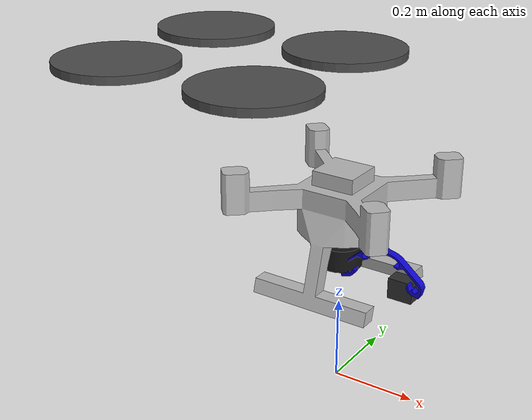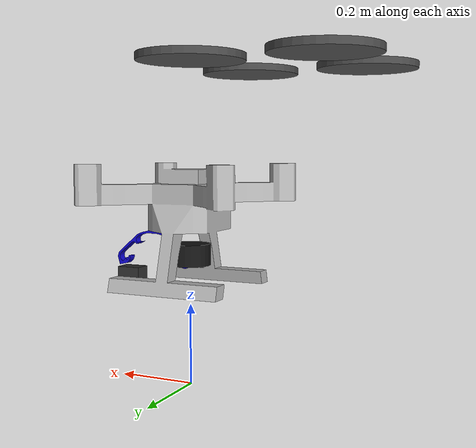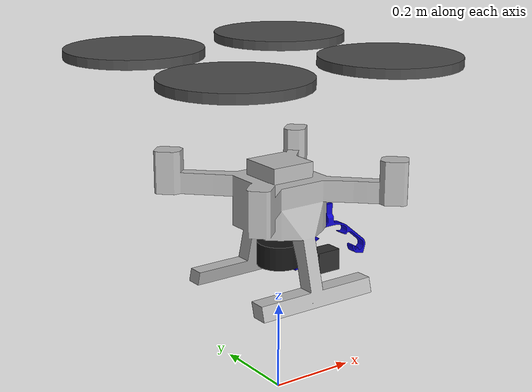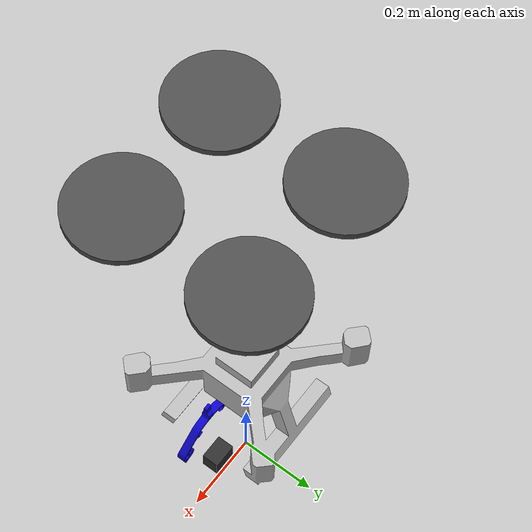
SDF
<?xml version="1.0" encoding="UTF-8"?>
<sdf version='1.9'>
  <model name='piazinho_rplidar'>
    <include merge='true'>
      <uri>piazinho_mono_cam</uri>
    </include>
    <include merge='true'>
      <uri>model://rplidar_a3m1</uri>
      <pose relative_to="base_link">0 0 0.3 0 0 0</pose>
    </include>
    <joint name="LidarJoint" type="fixed">
      <parent>base_link</parent>
      <child>rplidar_a3m1/base_link</child>
    </joint>
  </model>
</sdf>

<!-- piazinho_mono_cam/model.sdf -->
<sdf version='1.9'>
  <model name='piazinho_mono_cam'>
    <include merge='true'>
      <uri>piazinho</uri>
    </include>
    <include merge='true'>
      <uri>model://mono_cam</uri>
      <pose>.12 .03 .242 0 0 0</pose>
    </include>
    <joint name="CameraJoint" type="fixed">
      <parent>base_link</parent>
      <child>mono_cam/base_link</child>
      <pose relative_to="base_link">.12 .03 .242 0 0 0</pose>
    </joint>
  </model>
</sdf>

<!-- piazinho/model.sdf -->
<sdf version='1.9'>
  <model name='piazinho'>
    <include merge='true'>
      <uri>model://piazinho_base</uri>
    </include>
    <plugin filename="gz-sim-multicopter-motor-model-system" name="gz::sim::systems::MulticopterMotorModel">
      <jointName>rotor_0_joint</jointName>
      <linkName>rotor_0</linkName>
      <turningDirection>ccw</turningDirection>
      <timeConstantUp>0.0125</timeConstantUp>
      <timeConstantDown>0.025</timeConstantDown>
      <maxRotVelocity>1000.0</maxRotVelocity>
      <motorConstant>4.656e-05</motorConstant>
      <momentConstant>0.016</momentConstant>
      <commandSubTopic>command/motor_speed</commandSubTopic>
      <motorNumber>0</motorNumber>
      <rotorDragCoefficient>8.06428e-05</rotorDragCoefficient>
      <rollingMomentCoefficient>1e-06</rollingMomentCoefficient>
      <rotorVelocitySlowdownSim>10</rotorVelocitySlowdownSim>
      <motorType>velocity</motorType>
    </plugin>
    <plugin filename="gz-sim-multicopter-motor-model-system" name="gz::sim::systems::MulticopterMotorModel">
      <jointName>rotor_1_joint</jointName>
      <linkName>rotor_1</linkName>
      <turningDirection>ccw</turningDirection>
      <timeConstantUp>0.0125</timeConstantUp>
      <timeConstantDown>0.025</timeConstantDown>
      <maxRotVelocity>1000.0</maxRotVelocity>
      <motorConstant>4.656e-05</motorConstant>
      <momentConstant>0.016</momentConstant>
      <commandSubTopic>command/motor_speed</commandSubTopic>
      <motorNumber>1</motorNumber>
      <rotorDragCoefficient>8.06428e-05</rotorDragCoefficient>
      <rollingMomentCoefficient>1e-06</rollingMomentCoefficient>
      <rotorVelocitySlowdownSim>10</rotorVelocitySlowdownSim>
      <motorType>velocity</motorType>
    </plugin>
    <plugin filename="gz-sim-multicopter-motor-model-system" name="gz::sim::systems::MulticopterMotorModel">
      <jointName>rotor_2_joint</jointName>
      <linkName>rotor_2</linkName>
      <turningDirection>cw</turningDirection>
      <timeConstantUp>0.0125</timeConstantUp>
      <timeConstantDown>0.025</timeConstantDown>
      <maxRotVelocity>1000.0</maxRotVelocity>
      <motorConstant>4.656e-05</motorConstant>
      <momentConstant>0.016</momentConstant>
      <commandSubTopic>command/motor_speed</commandSubTopic>
      <motorNumber>2</motorNumber>
      <rotorDragCoefficient>8.06428e-05</rotorDragCoefficient>
      <rollingMomentCoefficient>1e-06</rollingMomentCoefficient>
      <rotorVelocitySlowdownSim>10</rotorVelocitySlowdownSim>
      <motorType>velocity</motorType>
    </plugin>
    <plugin filename="gz-sim-multicopter-motor-model-system" name="gz::sim::systems::MulticopterMotorModel">
      <jointName>rotor_3_joint</jointName>
      <linkName>rotor_3</linkName>
      <turningDirection>cw</turningDirection>
      <timeConstantUp>0.0125</timeConstantUp>
      <timeConstantDown>0.025</timeConstantDown>
      <maxRotVelocity>1000.0</maxRotVelocity>
      <motorConstant>4.656e-05</motorConstant>
      <momentConstant>0.016</momentConstant>
      <commandSubTopic>command/motor_speed</commandSubTopic>
      <motorNumber>3</motorNumber>
      <rotorDragCoefficient>8.06428e-05</rotorDragCoefficient>
      <rollingMomentCoefficient>1e-06</rollingMomentCoefficient>
      <rotorVelocitySlowdownSim>10</rotorVelocitySlowdownSim>
      <motorType>velocity</motorType>
    </plugin>
  </model>
</sdf>

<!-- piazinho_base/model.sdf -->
<sdf version='1.9'>
  <model name='piazinho_base'>
    <pose>0 0 0.24 0 0 0</pose>
    <self_collide>false</self_collide>
    <static>false</static>
    <link name="base_link">
      <inertial>
        <mass>2.35</mass>
        <inertia>
          <ixx>0.02166666666666667</ixx>
          <ixy>0</ixy>
          <ixz>0</ixz>
          <iyy>0.02166666666666667</iyy>
          <iyz>0</iyz>
          <izz>0.04000000000000001</izz>
        </inertia>
      </inertial>
      <gravity>true</gravity>
      <velocity_decay/>
      <visual name="base_link_visual">
        <pose>0 0 0.005 0 0 0</pose>
        <geometry>
          <mesh>
            <scale>1 1 1</scale>
            <uri>model://piazinho_base/meshes/Piazinho.dae</uri>
          </mesh>
        </geometry>
      </visual>
      <collision name="base_link_collision">
        <pose>0 0 0.005 0 0 0</pose>
        <geometry>
          <mesh>
            <scale>1 1 1</scale>
            <uri>model://piazinho_base/meshes/Piazinho_Collision.stl</uri>
          </mesh>
        </geometry>
        <surface>
          <contact>
            <ode>
              <min_depth>0.001</min_depth>
              <max_vel>0</max_vel>
            </ode>
          </contact>
          <friction>
            <ode/>
          </friction>
        </surface>
      </collision>
      <sensor name="air_pressure_sensor" type="air_pressure">
        <always_on>1</always_on>
        <update_rate>50</update_rate>
        <air_pressure>
          <pressure>
            <noise type="gaussian">
              <mean>0</mean>
              <stddev>0.01</stddev>
            </noise>
          </pressure>
        </air_pressure>
      </sensor>
      <sensor name="imu_sensor" type="imu">
        <always_on>1</always_on>
        <update_rate>250</update_rate>
        <imu>
          <angular_velocity>
            <x>
              <noise type="gaussian">
                <mean>0</mean>
                <stddev>0.00018665</stddev>
                <dynamic_bias_stddev>3.8785e-05</dynamic_bias_stddev>
                <dynamic_bias_correlation_time>1000</dynamic_bias_correlation_time>
              </noise>
            </x>
            <y>
              <noise type="gaussian">
                <mean>0</mean>
                <stddev>0.00018665</stddev>
                <dynamic_bias_stddev>3.8785e-05</dynamic_bias_stddev>
                <dynamic_bias_correlation_time>1000</dynamic_bias_correlation_time>
              </noise>
            </y>
            <z>
              <noise type="gaussian">
                <mean>0</mean>
                <stddev>0.00018665</stddev>
                <dynamic_bias_stddev>3.8785e-05</dynamic_bias_stddev>
                <dynamic_bias_correlation_time>1000</dynamic_bias_correlation_time>
              </noise>
            </z>
          </angular_velocity>
          <linear_acceleration>
            <x>
              <noise type="gaussian">
                <mean>0</mean>
                <stddev>0.00186</stddev>
                <dynamic_bias_stddev>0.006</dynamic_bias_stddev>
                <dynamic_bias_correlation_time>300</dynamic_bias_correlation_time>
              </noise>
            </x>
            <y>
              <noise type="gaussian">
                <mean>0</mean>
                <stddev>0.00186</stddev>
                <dynamic_bias_stddev>0.006</dynamic_bias_stddev>
                <dynamic_bias_correlation_time>300</dynamic_bias_correlation_time>
              </noise>
            </y>
            <z>
              <noise type="gaussian">
                <mean>0</mean>
                <stddev>0.00186</stddev>
                <dynamic_bias_stddev>0.006</dynamic_bias_stddev>
                <dynamic_bias_correlation_time>300</dynamic_bias_correlation_time>
              </noise>
            </z>
          </linear_acceleration>
        </imu>
      </sensor>
      <sensor name="navsat_sensor" type="navsat">
        <always_on>1</always_on>
        <update_rate>10</update_rate>
        <navsat>
          <position_sensing>
            <horizontal>
              <noise type="gaussian">
                <mean>0.0</mean>
                <stddev>0.000002</stddev>
              </noise>
            </horizontal>
            <vertical>
              <noise type="gaussian">
                <mean>0.0</mean>
                <stddev>0.2</stddev>
              </noise>
            </vertical>
          </position_sensing>
          <velocity_sensing>
            <horizontal>
              <noise type="gaussian">
                <mean>0.0</mean>
                <stddev>0.05</stddev>
              </noise>
            </horizontal>
            <vertical>
              <noise type="gaussian">
                <mean>0.0</mean>
                <stddev>0.05</stddev>
              </noise>
            </vertical>
          </velocity_sensing>
        </navsat>
      </sensor>

    </link>

    <link name="rotor_0">
      <gravity>true</gravity>
      <self_collide>false</self_collide>
      <velocity_decay/>
      <pose>0.169826 -0.168623 0.282644 0 0 0</pose>
      <inertial>
          <mass>0.016076923076923075</mass>
          <inertia>
            <ixx>3.8464910483993325e-07</ixx>
            <iyy>2.6115851691700804e-05</iyy>
            <izz>2.649858234714004e-05</izz>
          </inertia>
        </inertial>
      <visual name="rotor_0_visual">
        <pose>0 0 0 0 0 0</pose>
        <geometry>
          <mesh>
            <scale>1 1 1</scale>
            <uri>model://piazinho_base/meshes/1045_prop_CCW.stl</uri>
          </mesh>
        </geometry>
        <material>
          <script>
            <name>Gazebo/DarkGrey</name>
            <uri>file://media/materials/scripts/gazebo.material</uri>
          </script>
        </material>
      </visual>
      <collision name="rotor_0_collision">
        <pose>0 0 0 0 0 0</pose>
        <geometry>
          <mesh>
            <scale>1 1 1</scale>
            <uri>model://piazinho_base/meshes/Prop_Collision.stl</uri>
          </mesh>
        </geometry>
        <surface>
          <contact>
            <ode>
              <min_depth>0.001</min_depth>
              <max_vel>0</max_vel>
            </ode>
          </contact>
          <friction>
            <ode/>
          </friction>
        </surface>
      </collision>
    </link>
    <joint name="rotor_0_joint" type="revolute">
      <parent>base_link</parent>
      <child>rotor_0</child>
      <axis>
        <xyz>0 0 1</xyz>
        <limit>
          <lower>-1e+16</lower>
          <upper>1e+16</upper>
        </limit>
        <dynamics>
          <spring_reference>0</spring_reference>
          <spring_stiffness>0</spring_stiffness>
        </dynamics>
      </axis>
    </joint>
    <link name="rotor_1">
      <gravity>true</gravity>
      <self_collide>false</self_collide>
      <velocity_decay/>
      <pose>-0.1717 0.172902 0.282644 0 0 0</pose>
      <inertial>
          <mass>0.016076923076923075</mass>
          <inertia>
            <ixx>3.8464910483993325e-07</ixx>
            <iyy>2.6115851691700804e-05</iyy>
            <izz>2.649858234714004e-05</izz>
          </inertia>
        </inertial>
      <visual name="rotor_1_visual">
        <pose>0 0 0 0 0 0</pose>
        <geometry>
          <mesh>
            <scale>1 1 1</scale>
            <uri>model://piazinho_base/meshes/1045_prop_CCW.stl</uri>
          </mesh>
        </geometry>
        <material>
          <script>
            <name>Gazebo/DarkGrey</name>
            <uri>file://media/materials/scripts/gazebo.material</uri>
          </script>
        </material>
      </visual>
      <collision name="rotor_1_collision">
        <pose>0 0 0 0 0 0</pose>
        <geometry>
          <mesh>
            <scale>1 1 1</scale>
            <uri>model://piazinho_base/meshes/Prop_Collision.stl</uri>
          </mesh>
        </geometry>
        <surface>
          <contact>
            <ode>
              <min_depth>0.001</min_depth>
              <max_vel>0</max_vel>
            </ode>
          </contact>
          <friction>
            <ode/>
          </friction>
        </surface>
      </collision>
    </link>
    <joint name="rotor_1_joint" type="revolute">
      <parent>base_link</parent>
      <child>rotor_1</child>
      <axis>
        <xyz>0 0 1</xyz>
        <limit>
          <lower>-1e+16</lower>
          <upper>1e+16</upper>
        </limit>
        <dynamics>
          <spring_reference>0</spring_reference>
          <spring_stiffness>0</spring_stiffness>
        </dynamics>
      </axis>
    </joint>
    <link name="rotor_2">
      <gravity>true</gravity>
      <self_collide>false</self_collide>
      <velocity_decay/>
      <pose>0.169826 0.172902 0.282644 0 0 0</pose>
      <inertial>
          <mass>0.016076923076923075</mass>
          <inertia>
            <ixx>3.8464910483993325e-07</ixx>
            <iyy>2.6115851691700804e-05</iyy>
            <izz>2.649858234714004e-05</izz>
          </inertia>
        </inertial>
      <visual name="rotor_2_visual">
        <pose>0 0 0 0 0 0</pose>
        <geometry>
          <mesh>
            <scale>1 1 1</scale>
            <uri>model://piazinho_base/meshes/1045_prop_CW.stl</uri>
          </mesh>
        </geometry>
        <material>
          <script>
            <name>Gazebo/DarkGrey</name>
            <uri>file://media/materials/scripts/gazebo.material</uri>
          </script>
        </material>
      </visual>
      <collision name="rotor_2_collision">
        <pose>0 0 0 0 0 0 </pose>
        <geometry>
          <mesh>
            <scale>1 1 1</scale>
            <uri>model://piazinho_base/meshes/Prop_Collision.stl</uri>
          </mesh>
        </geometry>
        <surface>
          <contact>
            <ode>
              <min_depth>0.001</min_depth>
              <max_vel>0</max_vel>
            </ode>
          </contact>
          <friction>
            <ode/>
          </friction>
        </surface>
      </collision>
    </link>
    <joint name="rotor_2_joint" type="revolute">
      <parent>base_link</parent>
      <child>rotor_2</child>
      <axis>
        <xyz>0 0 1</xyz>
        <limit>
          <lower>-1e+16</lower>
          <upper>1e+16</upper>
        </limit>
        <dynamics>
          <spring_reference>0</spring_reference>
          <spring_stiffness>0</spring_stiffness>
        </dynamics>
      </axis>
    </joint>
    <link name="rotor_3">
      <gravity>true</gravity>
      <self_collide>false</self_collide>
      <velocity_decay/>
      <pose>-0.1717 -0.168623 0.282644 0 0 0</pose>
      <inertial>
          <mass>0.016076923076923075</mass>
          <inertia>
            <ixx>3.8464910483993325e-07</ixx>
            <iyy>2.6115851691700804e-05</iyy>
            <izz>2.649858234714004e-05</izz>
          </inertia>
        </inertial>
      <visual name="rotor_3_visual">
        <pose>0 0 0 0 0 0</pose>
        <geometry>
          <mesh>
            <scale>1 1 1</scale>
            <uri>model://piazinho_base/meshes/1045_prop_CW.stl</uri>
          </mesh>
        </geometry>
        <material>
          <script>
            <name>Gazebo/DarkGrey</name>
            <uri>file://media/materials/scripts/gazebo.material</uri>
          </script>
        </material>
      </visual>
      <collision name="rotor_3_collision">
        <pose>0 0 0 0 0 0 </pose>
        <geometry>
          <mesh>
            <scale>1 1 1</scale>
            <uri>model://piazinho_base/meshes/Prop_Collision.stl</uri>
          </mesh>
        </geometry>
        <surface>
          <contact>
            <ode>
              <min_depth>0.001</min_depth>
              <max_vel>0</max_vel>
            </ode>
          </contact>
          <friction>
            <ode/>
          </friction>
        </surface>
      </collision>
    </link>
    <joint name="rotor_3_joint" type="revolute">
      <parent>base_link</parent>
      <child>rotor_3</child>
      <axis>
        <xyz>0 0 1</xyz>
        <limit>
          <lower>-1e+16</lower>
          <upper>1e+16</upper>
        </limit>
        <dynamics>
          <spring_reference>0</spring_reference>
          <spring_stiffness>0</spring_stiffness>
        </dynamics>
      </axis>
    </joint>

    <model name="payload_model">
      <pose relative_to="base_link">0.119381 -0.021485 0.169178 0 0 0</pose>
      <link name="payload_hook">
        <inertial>
          <mass>0.2</mass>
          <inertia>
            <ixx>0.001</ixx><ixy>0</ixy><ixz>0</ixz>
            <iyy>0.001</iyy><iyz>0</iyz><izz>0.001</izz>
          </inertia>
        </inertial>

        <!-- VISUAL -->
        <visual name="hook_visual">
          <pose>0 0 0 0 0 0</pose>
          <geometry>
            <mesh>
              <scale>1 1 1</scale>
              <uri>model://piazinho_base/meshes/hook.dae</uri>
            </mesh>
          </geometry>
        </visual>

        <collision name="hook_collision">
          <pose>0 0 0 0 0 0</pose>
          <geometry>
            <mesh>
              <scale>1 1 1</scale>
              <uri>model://piazinho_base/meshes/hook_Collision.stl</uri>
            </mesh>
          </geometry>
          <surface>
            <contact>
              <ode>
                <min_depth>0.001</min_depth>
                <max_vel>0</max_vel>
              </ode>
            </contact>
            <friction>
              <ode>
                <mu>1.0</mu>
                <mu2>1.0</mu2>
              </ode>
            </friction>
          </surface>
        </collision>
      </link>
      <plugin filename="gz-sim-odometry-publisher-system" name="gz::sim::systems::OdometryPublisher">
        <odom_frame>odom</odom_frame>
        <robot_base_frame>base_link</robot_base_frame>
        <odom_publish_frequency>50</odom_publish_frequency>
        <dimensions>3</dimensions>
      </plugin>
    </model>

    <plugin filename="gz-sim-detachable-joint-system" name="gz::sim::systems::DetachableJoint">
      <parent_link>base_link</parent_link>
      <child_model>payload_model</child_model>
      <child_link>payload_hook</child_link>
      <detach_topic>/sim/hook</detach_topic>
    </plugin>

  </model>
</sdf>

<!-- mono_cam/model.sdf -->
<sdf version="1.9">
  <model name="mono_cam">
    <pose>0 0 0 0 0 0</pose>
    <self_collide>false</self_collide>
    <static>false</static>

    <link name="mono_cam/base_link">

      <inertial>
        <pose>0.03 0.03 0.03 0 0 0</pose>
        <mass>0.050</mass>
        <inertia>
          <ixx>0.00004</ixx>
          <ixy>0</ixy>
          <ixz>0</ixz>
          <iyy>0.00004</iyy>
          <iyz>0</iyz>
          <izz>0.00004</izz>
        </inertia>
      </inertial>

      <visual name="mono_cam/visual">
        <pose>0.03 0 0.025 0 0 0</pose>
        <geometry>
          <box>
            <size>0.06 0.04 0.05</size>
          </box>
        </geometry>
        <material>
          <ambient>0.18 0.18 0.18 1</ambient>
          <diffuse>0.18 0.18 0.18 1</diffuse>
          <specular>0.05 0.05 0.05 1</specular>
        </material>
      </visual>

      <sensor name="imager" type="camera">
        <pose>0 0 0 0 0 0</pose>

        <camera>

          <image>
            <width>1280</width>
            <height>720</height>
            <format>R8G8B8</format>
          </image>

          <clip>
            <near>0.015</near>
            <far>3000</far>
          </clip>

          <lens>
            <intrinsics>
              <fx>984.0293956169063</fx>
              <fy>978.0169725826389</fy>
              <cx>640.4458836683775</cx>
              <cy>360.4530994081536</cy>
            </intrinsics>

            <distortion>
              <k1>0.009424</k1>
              <k2>-0.005972</k2>
              <k3>0.0</k3>
              <p1>0.010292</p1>
              <p2>-0.006974</p2>
            </distortion>
          </lens>

        </camera>

        <always_on>true</always_on>
        <update_rate>30</update_rate>
        <visualize>true</visualize>
        <topic>camera</topic>

      </sensor>

      <gravity>true</gravity>
      <velocity_decay/>

    </link>
  </model>
</sdf>

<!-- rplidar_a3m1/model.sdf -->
<sdf version="1.9">
  <model name="rplidar_a3m1">
    <pose>0 0 0 0 0 0</pose>
    <self_collide>false</self_collide>
    <static>false</static>

    <link name="rplidar_a3m1/base_link">

      <inertial>
        <pose>0 0 0.0265 0 0 0</pose>
        <mass>0.190</mass>
        <inertia>
          <ixx>0.00016323</ixx>
          <ixy>0</ixy>
          <ixz>0</ixz>
          <iyy>0.00016323</iyy>
          <iyz>0</iyz>
          <izz>0.00023750</izz>
        </inertia>
      </inertial>

      <visual name="rplidar_a3m1_visual">
        <pose>0 0 0.0265 0 0 0</pose>
        <geometry>
          <cylinder>
            <radius>0.05</radius>
            <length>0.053</length>
          </cylinder>
        </geometry>
        <material>
          <ambient>0.05 0.05 0.05 1</ambient>
          <diffuse>0.08 0.08 0.08 1</diffuse>
          <specular>0.2 0.2 0.2 1</specular>
        </material>
      </visual>

      <collision name="rplidar_a3m1_collision">
        <pose>0 0 0.0265 0 0 0</pose>
        <geometry>
          <cylinder>
            <radius>0.05</radius>
            <length>0.053</length>
          </cylinder>
        </geometry>
      </collision>

      <sensor name="rplidar_a3m1_sensor" type="gpu_lidar">
        <pose>0 0 0.053 0 0 0</pose>
        <topic>scan</topic>
        <gz_frame_id>rplidar_frame</gz_frame_id>
        <update_rate>10</update_rate>
        <always_on>true</always_on>
        <visualize>true</visualize>
        <lidar>
          <scan>
            <horizontal>
              <samples>1600</samples>
              <resolution>1</resolution>
              <min_angle>-3.141592653589793</min_angle>
              <max_angle>3.141592653589793</max_angle>
            </horizontal>
            <vertical>
              <samples>1</samples>
              <resolution>1</resolution>
              <min_angle>0</min_angle>
              <max_angle>0</max_angle>
            </vertical>
          </scan>
          <range>
            <min>0.2</min>
            <max>25.0</max>
            <resolution>0.01</resolution>
          </range>
          <noise>
            <type>gaussian</type>
            <mean>0.0</mean>
            <stddev>0.01</stddev>
          </noise>
        </lidar>
      </sensor>

      <gravity>true</gravity>
      <velocity_decay/>

    </link>
  </model>
</sdf>
